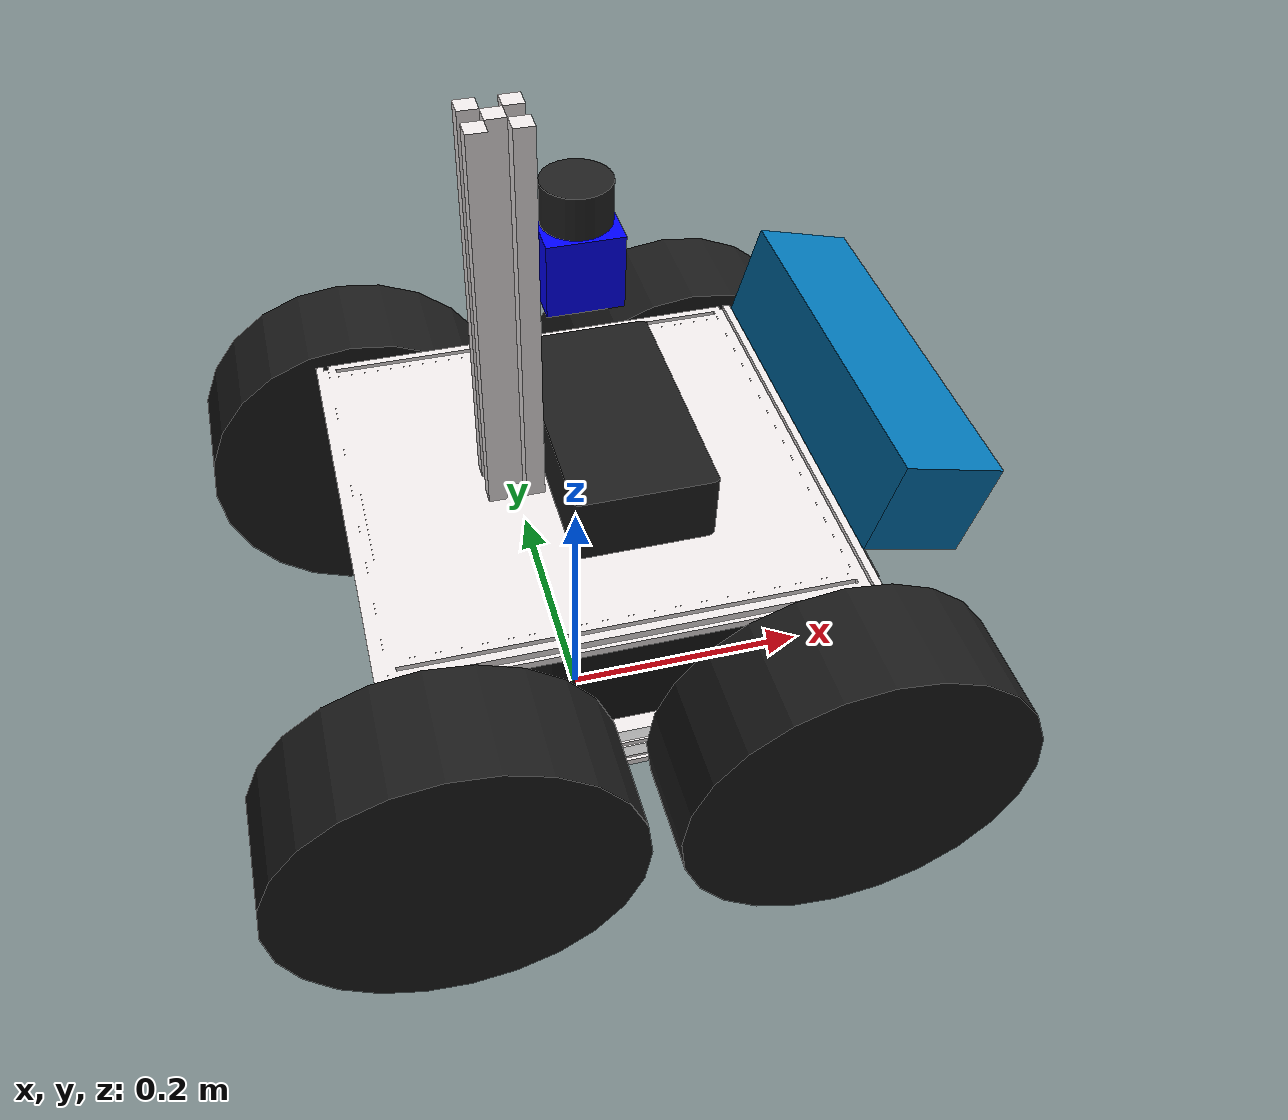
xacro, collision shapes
<?xml version="1.0"?>
<robot name="Volksbot"
	xmlns:xi="http://www.w3.org/2001/XInclude"
	xmlns:gazebo="http://playerstage.sourceforge.net/gazebo/xmlschema/#gz"
	xmlns:model="http://playerstage.sourceforge.net/gazebo/xmlschema/#model"
	xmlns:sensor="http://playerstage.sourceforge.net/gazebo/xmlschema/#sensor"
	xmlns:body="http://playerstage.sourceforge.net/gazebo/xmlschema/#body"
	xmlns:geom="http://playerstage.sourceforge.net/gazebo/xmlschema/#geom"
	xmlns:joint="http://playerstage.sourceforge.net/gazebo/xmlschema/#joint"
	xmlns:controller="http://playerstage.sourceforge.net/gazebo/xmlschema/#controller"
	xmlns:interface="http://playerstage.sourceforge.net/gazebo/xmlschema/#interface"
	xmlns:rendering="http://playerstage.sourceforge.net/gazebo/xmlschema/#rendering"
	xmlns:renderable="http://playerstage.sourceforge.net/gazebo/xmlschema/#renderable"
	xmlns:physics="http://playerstage.sourceforge.net/gazebo/xmlschema/#physics"
	xmlns:xacro="http://ros.org/wiki/xacro"
>

<!--Variable Pi definieren-->
<property name="pi" value="3.1415926535897931"/>
<property name="mass_base" value="25"/>     <!-- alter Wert 25 -->
<property name="mass_wheel" value="0.85"/>  <!-- alter Wert 0.75 -->

	<link name="base_footprint">
		<visual>
			<geometry>
				<box size="0.001 0.001 0.001"/>
			</geometry>
			<origin rpy="0 0 0" xyz="0 0 0"/>
		</visual>
	</link>
	<joint name="base_footprint_joint" type="fixed">
		<parent link="base_footprint"/>
		<child link="base_link"/>
		<origin rpy="0 0 0" xyz="0 0 0"/>
	</joint>

<!-- #######################  Main Body  ###################################-->
	<link name="base_link">
		<visual>
			<geometry>
				<mesh filename="package://volksbot_new/Media/VolksbotChassis.stl"/>
			</geometry>
			<origin rpy="0 0 0" xyz="0 0 0.175"/>
			<material name="light_gray_one">
				<color rgba="0.93 0.91 0.91 1"/>
			</material>
		</visual>
		<collision>
			<geometry>
				<mesh filename="package://volksbot_new/Media/VolksbotChassis.stl"/>
			</geometry>
			<origin xyz="0 0 0.175"/>
		</collision>
		<inertial>
			<mass value="${mass_base}"/>
			<inertia ixx="0.83333" ixy="0.0" ixz="0.0" iyy="1.0052" iyz="0.0" izz="0.33854"/>
			<origin xyz="0 0 0.075" />
		</inertial>
	</link>
	<gazebo reference="base_link">
		<material>Gazebo/WhiteGlow</material>
		<turnGravityOff>false</turnGravityOff>
	</gazebo>
<!-- #######################  Frontplatte  ###################################-->
	<link name="frontpanel_link">
		<visual>
			<geometry>
				<mesh filename="package://volksbot_new/Media/VolksbotFrontplatte.stl"/>
			</geometry>
			<origin rpy="0 0 0" xyz="-0.002 0 0.075"/>
			<material name="gray">
				<color rgba="0.36 .36 .36 1"/>
			</material>
		</visual>
		<collision>
			<geometry>
				<mesh filename="package://volksbot_new/Media/VolksbotFrontplatte.stl"/>
			</geometry>
			<origin xyz="-0.002 0 0.075"/>
		</collision>
		<inertial>
			<mass value="0.01"/>
			<inertia ixx="0.0001" ixy="0.0" ixz="0.0" iyy="0.0001" iyz="0.0" izz="0.0001"/>
			<origin xyz="-0.17 0 -0.025" />
		</inertial>
	</link>
	<joint name="frontpanel_joint" type="fixed">
		<parent link="base_link"/>
		<child link="frontpanel_link"/>
		<origin rpy="0 0 0" xyz="0.17 0 0.1"/>
	</joint>

	<gazebo reference="frontpanel_link">
		<material>Gazebo/Black</material>
		<turnGravityOff>false</turnGravityOff>
	</gazebo>
<!-- #######################  Laserstange  ###################################-->
	<link name="laserstick_link">
		<visual>
			<geometry>
				<mesh filename="package://volksbot_new/Media/VolksbotLaserstange.stl"/>
			</geometry>
			<origin rpy="0 0 0" xyz="0 0 0"/>
			<material name="light_gray_one">
				<color rgba="0.93 0.91 0.91 1"/>
			</material>
		</visual>
		<collision>
			<geometry>
				<mesh filename="package://volksbot_new/Media/VolksbotLaserstange.stl"/>
			</geometry>
			<origin xyz="0 0 0"/>
		</collision>
		<inertial>
			<mass value="0.01"/>
			<inertia ixx="0.0001" ixy="0.0" ixz="0.0" iyy="0.0001" iyz="0.0" izz="0.0001"/>
			<origin xyz="0 0 -0.175" />
		</inertial>
	</link>
	<joint name="laserstick_joint" type="fixed">
		<parent link="base_link"/>
		<child link="laserstick_link"/>
		<origin rpy="0 0 0" xyz="0 0 0.25"/>
	</joint>

	<gazebo reference="laserstick_link">
		<material>Gazebo/WhiteGlow</material>
		<turnGravityOff>false</turnGravityOff>
	</gazebo>

<!-- #######################  Pc  ###################################-->
	<link name="pc_link">
		<visual>
			<geometry>
				<mesh filename="package://volksbot_new/Media/VolksbotPc.stl"/>
			</geometry>
			<origin rpy="0 0 0" xyz="-0.05 0 0"/>
			<material name="dark_gray">
				<color rgba="0.11 .11 .11 1"/>
			</material>
		</visual>
		<collision>
			<geometry>
				<mesh filename="package://volksbot_new/Media/VolksbotPc.stl"/>
			</geometry>
			<origin xyz="-0.05 0 0"/>
		</collision>
		<inertial>
			<mass value="0.01"/>
			<inertia ixx="0.0001" ixy="0.0" ixz="0.0" iyy="0.0001" iyz="0.0" izz="0.0001"/>
			<origin xyz="-0.05 0 -0.175" />
		</inertial>
	</link>
	<joint name="pc_joint" type="fixed">
		<parent link="base_link"/>
		<child link="pc_link"/>
		<origin rpy="0 0 0" xyz="0.05 0 0.25"/>
	</joint>
	<gazebo reference="pc_link">
		<material>Gazebo/Black</material>
		<turnGravityOff>false</turnGravityOff>
	</gazebo>

<!-- #######################  Motor&Kette  ###################################-->
	<link name="motor_link">
		<visual>
			<geometry>
				<mesh filename="package://volksbot_new/Media/VolksbotAntrieb.stl"/>
			</geometry>
			<origin rpy="0 0 0" xyz="0 0 0"/>
			<material name="another_gray">
				<color rgba="0.65 .65 .65 1"/>
			</material>
		</visual>
		<collision>
			<geometry>
				<mesh filename="package://volksbot_new/Media/VolksbotAntrieb.stl"/>
			</geometry>
			<origin xyz="0 0 0"/>
		</collision>
		<inertial>
			<mass value="0.01"/>
			<inertia ixx="0.0001" ixy="0.0" ixz="0.0" iyy="0.0001" iyz="0.0" izz="0.0001"/>
			<origin xyz="0 0 -0.055" />
		</inertial>
	</link>
	<joint name="motor_joint" type="fixed">
		<parent link="base_link"/>
		<child link="motor_link"/>
		<origin rpy="0 0 0" xyz="0 0 0.13"/>
	</joint>
	<gazebo reference="motor_link">
		<material>Gazebo/BlueGlow</material>
		<turnGravityOff>false</turnGravityOff>
	</gazebo>
<!-- #######################  Battery  ###################################-->
	<link name="battery_link">
		<visual>
			<geometry>
				<mesh filename="package://volksbot_new/Media/VolksbotBattery.stl"/>
			</geometry>
			<origin rpy="0 0 0" xyz="0 0 0"/>
			<material name="battery_gray">
				<color rgba=".07 .07 .07 1"/>
			</material>
		</visual>
		<collision>
			<geometry>
				<mesh filename="package://volksbot_new/Media/VolksbotBattery.stl"/>
			</geometry>
			<origin xyz="0 0 0"/>
		</collision>
		<inertial>
			<mass value="0.01"/>
			<inertia ixx="0.0001" ixy="0.0" ixz="0.0" iyy="0.0001" iyz="0.0" izz="0.0001"/>
			<origin xyz="0 0 -0.025" />
		</inertial>
	</link>
	<joint name="battery_joint" type="fixed">
		<parent link="base_link"/>
		<child link="battery_link"/>
		<origin rpy="0 0 0" xyz="0 0 0.1"/>
	</joint>
	<gazebo reference="battery_link">
		<material>Gazebo/Black</material>
		<turnGravityOff>false</turnGravityOff>
	</gazebo>
<!--  ##############################  Rad vorne Rechts  ##############################-->
	<link name="right_front_wheel">
		<visual>
			<geometry>
				<mesh filename="package://volksbot_new/Media/original5.stl"/>
			</geometry>
			<origin rpy="${pi/2} 0 0" xyz="0 0 0"/>
			<material name="black">
				<color rgba="0.1 0.1 0.1 1"/>
			</material>
		</visual>
		<collision>
			<geometry>
				<cylinder length="0.085" radius="0.13"/>
			</geometry>
			<origin rpy="${pi/2} 0 0" xyz="0 0 0"/>
		</collision>
		<inertial>
			<mass value="${mass_wheel}"/>
			<inertia ixx="0.0041" ixy="0.0" ixz="0.0" iyy="0.0041" iyz="0.0" izz="0.00718"/>
			<origin xyz="0 0 0" />
		</inertial>
	</link>

	<joint name="right_front_wheel_joint" type="continuous">
		<axis xyz="0 1 0"/>
		<parent link="base_link"/>
		<child link="right_front_wheel"/>
		<origin rpy="0 0 0" xyz="0.14 -0.2075 0.13"/>
		<limit effort="100" velocity="100"/>
		<dynamics damping="0.0" friction="0.0"/>
	</joint>
	<gazebo reference="right_front_wheel">
		<mu1 value="100"/>
		<mu2 value="100"/>
		<kp value="1000000.0"/>
		<kd value="10000.0"/>
		<fdir value="1 0 0"/>
		<friction value="100.0"/>
		<material>Gazebo/Grey</material>
		<turnGravityOff>false</turnGravityOff>
	</gazebo>

<!--  ###############################  Rad hinten Rechts  ########################################## -->
	<link name="right_back_wheel">
		<visual>
			<geometry>
				<mesh filename="package://volksbot_new/Media/original5.stl"/>
			</geometry>
			<origin rpy="${pi/2} 0 0" xyz="0 0 0"/>
			<material name="black">
				<color rgba="0.1 0.1 0.1 1"/>
			</material>
		</visual>
		<collision>
			<geometry>
				<cylinder length="0.085" radius="0.13"/>
			</geometry>
			<origin rpy="${pi/2} 0 0" xyz="0 0 0"/>
		</collision>
		<inertial>
			<mass value="${mass_wheel}"/>
			<inertia ixx="0.0041" ixy="0.0" ixz="0.0" iyy="0.0041" iyz="0.0" izz="0.00718"/>
			<origin xyz="0 0 0" />
		</inertial>
	</link>

	<joint name="right_back_wheel_joint" type="continuous">
		<axis xyz="0 1 0"/>
		<parent link="base_link"/>
		<child link="right_back_wheel"/>
		<origin rpy="0 0 0" xyz="-0.14 -0.2075 0.13"/>
		<limit effort="100" velocity="100"/>
		<dynamics damping="0.0" friction="0.0"/>
	</joint>
	<gazebo reference="right_back_wheel">
		<mu1 value="100"/>
		<mu2 value="100"/>
		<kp value="1000000.0"/>
		<kd value="10000.0"/>
		<fdir value="1 0 0"/>
		<friction value="100.0"/>
		<material>Gazebo/Grey</material>
		<turnGravityOff>false</turnGravityOff>
	</gazebo>

<!--  ####################################  Rad vorne Links #######################################-->
	<link name="left_front_wheel">
		<visual>
			<geometry>
				<mesh filename="package://volksbot_new/Media/original5.stl"/>
			</geometry>
			<origin rpy="${pi/2} 0 0" xyz="0 0 0"/>
			<material name="black">
				<color rgba="0.1 0.1 0.1 1"/>
			</material>
		</visual>
		<collision>
			<geometry>
				<cylinder length="0.085" radius="0.13"/>
			</geometry>
			<origin rpy="${pi/2} 0 0" xyz="0 0 0"/>
		</collision>
		<inertial>
			<mass value="${mass_wheel}"/>
			<inertia ixx="0.0041" ixy="0.0" ixz="0.0" iyy="0.0041" iyz="0.0" izz="0.00718"/>
			<origin xyz="0 0 0" />
		</inertial>
	</link>

	<joint name="left_front_wheel_joint" type="continuous">
		<axis xyz="0 1 0"/>
		<parent link="base_link"/>
		<child link="left_front_wheel"/>
		<origin rpy="0 0 0" xyz="0.14 0.2075 0.13"/>
		<limit effort="100" velocity="100"/>
		<dynamics damping="0.0" friction="0.0"/>
	</joint>
	<gazebo reference="left_front_wheel">
		<mu1 value="100"/>
		<mu2 value="100"/>
		<kp value="1000000.0"/>
		<kd value="10000.0"/>
		<fdir value="1 0 0"/>
		<friction value="100.0"/>
		<material>Gazebo/Grey</material>
		<turnGravityOff>false</turnGravityOff>
	</gazebo>

<!-- #############################  Rad hinten Links  ######################################-->
	<link name="left_back_wheel">
		<visual>
			<geometry>
				<mesh filename="package://volksbot_new/Media/original5.stl"/>
			</geometry>
			<origin rpy="${pi/2} 0 0" xyz="0 0 0"/>
			<material name="black">
				<color rgba="0.1 0.1 0.1 1"/>
			</material>
		</visual>
		<collision>
			<geometry>
				<cylinder length="0.085" radius="0.13"/>
			</geometry>
			<origin rpy="${pi/2} 0 0" xyz="0 0 0"/>
		</collision>
		<inertial>
			<mass value="${mass_wheel}"/>
			<inertia ixx="0.0041" ixy="0.0" ixz="0.0" iyy="0.0041" iyz="0.0" izz="0.00718"/>
			<origin xyz="0 0 0" />
		</inertial>
	</link>

	<joint name="left_back_wheel_joint" type="continuous">
		<axis xyz="0 1 0"/>
		<parent link="base_link"/>
		<child link="left_back_wheel"/>
		<origin rpy="0 0 0" xyz="-0.14 0.2075 0.13"/>
		<limit effort="100" velocity="100"/>
		<dynamics damping="0.0" friction="0.0"/>
	</joint>
	<gazebo reference="left_back_wheel">
		<mu1 value="100"/>  // alte Werte 57
		<mu2 value="100"/> // 1.5
		<kp value="1000000.0"/>  // 1000000.0
		<kd value="10000.0"/>    // 1.0
		<fdir value="1 0 0"/>  // 1 0 0
		<friction value="100.0"/>
		<material>Gazebo/Grey</material>
		<turnGravityOff>false</turnGravityOff>
	</gazebo>

<!--  #################################  camera  ########################################-->
	<link name="platform">
		<visual>
			<geometry>
				<box size="0.01 0.01 0.01"/>
			</geometry>
			<origin rpy="0 0 0" xyz="0 0 0"/>
			<material name="red">
				<color rgba="1 0 0 1"/>
			</material>
		</visual>
		<collision>
			<geometry>
				<box size="0.01 0.01 0.01"/>
			</geometry>
			<origin xyz="0 0 0"/>
		</collision>
		<inertial>
			<mass value="0.001"/>
			<inertia ixx=".0001" ixy="0.0" ixz="0.0" iyy=".0001" iyz="0.0" izz=".0001"/>
			<origin xyz="-0.2 0 -0.185" />
		</inertial>
	</link>
<!--position camera platform-->
	<joint name="base_link_to_platform" type="fixed">
		<parent link="base_link"/>
		<child link="platform"/>
		<origin rpy="0 0.25 0" xyz="0.2 0 0.26"/>
	</joint>

  <!-- Kinect frames and mounting (includes simulation) -->
  <joint name="base_camera_joint" type="fixed">
    <origin rpy="0 0 0" xyz="0 0 0.03"/>
    <parent link="platform"/>
    <child link="camera_link"/>
  </joint>
  <link name="camera_link">
    <inertial>
      <mass value="0.01"/>
      <origin xyz="-0.2 0 -0.185"/>
      <inertia ixx="0.001" ixy="0.0" ixz="0.0" iyy="0.001" iyz="0.0" izz="0.001"/>
    </inertial>
    <visual>
      <origin rpy="0 0 0" xyz=" 0 0 0 "/>
      <geometry>
        <mesh filename="package://volksbot_new/meshes/kinect.dae"/>
      </geometry>
    </visual>
    <collision>
      <origin rpy="0 0 0" xyz="0.0 0.0 0.0"/>
      <geometry>
        <box size="0.0730 .2760 0.0720"/>
      </geometry>
    </collision>
  </link>
  <joint name="camera_depth_joint" type="fixed">
    <origin rpy="0 0 0" xyz="0 0.018 0"/>
    <parent link="camera_link"/>
    <child link="camera_depth_frame"/>
  </joint>
  <link name="camera_depth_frame">
    <inertial>
      <mass value="0.01"/>
      <origin xyz="-0.2 0 -0.185"/>
      <inertia ixx="0.001" ixy="0.0" ixz="0.0" iyy="0.001" iyz="0.0" izz="0.001"/>
    </inertial>
  </link>
  <joint name="camera_depth_optical_joint" type="fixed">
    <origin rpy="-1.570795 0 -1.570795" xyz="0 0 0"/>
    <parent link="camera_depth_frame"/>
    <child link="camera_depth_optical_frame"/>
  </joint>
  <link name="camera_depth_optical_frame">
    <inertial>
      <mass value="0.001"/>
      <origin xyz="-0.2 0 -0.185"/>
      <inertia ixx="0.0001" ixy="0.0" ixz="0.0" iyy="0.0001" iyz="0.0" izz="0.0001"/>
    </inertial>
  </link>
  <joint name="camera_rgb_joint" type="fixed">
    <origin rpy="0 0 0" xyz="0 -0.005 0"/>
    <parent link="camera_link"/>
    <child link="camera_rgb_frame"/>
  </joint>
  <link name="camera_rgb_frame">
    <inertial>
      <mass value="0.001"/>
      <origin xyz="-0.2 0 -0.185"/>
      <inertia ixx="0.0001" ixy="0.0" ixz="0.0" iyy="0.0001" iyz="0.0" izz="0.0001"/>
    </inertial>
  </link>
  <joint name="camera_rgb_optical_joint" type="fixed">
    <origin rpy="-1.570795 0 -1.570795" xyz="0 0 0"/>
    <parent link="camera_rgb_frame"/>
    <child link="camera_rgb_optical_frame"/>
  </joint>
  <link name="camera_rgb_optical_frame">
    <inertial>
      <mass value="0.001"/>
      <origin xyz="-0.2 0 -0.185"/>
      <inertia ixx="0.0001" ixy="0.0" ixz="0.0" iyy="0.0001" iyz="0.0" izz="0.0001"/>
    </inertial>
  </link>
<!-- Kinect Einstellungen -->
  <gazebo reference="camera_link">
    <sensor:camera name="camera">
      <imageFormat>R8G8B8</imageFormat>
      <imageSize>640 480</imageSize>
      <hfov>90</hfov>
      <nearClip>0.05</nearClip>
      <farClip>10</farClip>  // Std 3
      <updateRate>20</updateRate>
      <baseline>0.1</baseline>
      <controller:gazebo_ros_openni_kinect name="kinect_camera_controller" plugin="libgazebo_ros_openni_kinect.so">
	<cameraName>camera</cameraName>
        <alwaysOn>true</alwaysOn>
        <updateRate>20</updateRate>
        <imageTopicName>camera/image_raw</imageTopicName>
        <pointCloudTopicName>camera/depth/points</pointCloudTopicName>
        <cameraInfoTopicName>camera/camera_info</cameraInfoTopicName>
        <frameName>camera_depth_optical_frame</frameName>
	<CxPrime>0.0</CxPrime>
	<Cx>0.0</Cx>
	<Cy>0.0</Cy>
	<focalLength>320.000101</focalLength>
	<hackBaseline>0.0</hackBaseline>
        <distortionK1>0.0</distortionK1>
        <distortionK2>0.0</distortionK2>
        <distortionK3>0.0</distortionK3>
        <distortionT1>0.0</distortionT1>
        <distortionT2>0.0</distortionT2>
      </controller:gazebo_ros_openni_kinect>
    </sensor:camera>
  </gazebo>

<!--  ###############################  laser ######################################### -->
	<link name="roll_tilt_base">
		<visual>
			<geometry>
				<box size="0.001 0.001 0.001"/>
			</geometry>
			<origin rpy="0 0 0" xyz="0 0 0"/>
		</visual>
		<inertial>
			<mass value="0.01"/>
			<inertia ixx=".001" ixy="0.0" ixz="0.0" iyy=".001" iyz="0.0" izz=".001"/>
			<origin xyz="0 0 0.0" />
		</inertial>
	</link>
	<joint name="base_link_to_roll_tilt_base" type="continuous">   <!--revolute-->
		<parent link="base_link"/>
		<child link="roll_tilt_base"/>
		 <axis xyz="1 0 0"/>
		<origin rpy="0 0 0" xyz="0 0 0.405"/>
	</joint>

	<link name="laser_platform">
		<visual>
			<geometry>
				<box size="0.01 0.01 0.01"/>
			</geometry>
			<origin rpy="0 0 0" xyz="0 0 0"/>
			<material name="blue">
				<color rgba="0 0 1 1"/>
			</material>
		</visual>
		<collision>
			<geometry>
				<box size="0.01 0.01 0.01"/>
			</geometry>
			<origin xyz="0 0 0"/>
		</collision>
		<inertial>
			<mass value="0.001"/>
			<inertia ixx=".001" ixy="0.0" ixz="0.0" iyy=".001" iyz="0.0" izz=".001"/>
			<origin xyz="0 0 -0.33" />
		</inertial>
	</link>
<!--position laser_platform-->
	<joint name="roll_tilt_base_to_laser_platform" type="continuous">   <!--revolute-->
		<parent link="roll_tilt_base"/>
		<child link="laser_platform"/>
		 <axis xyz="0 1 0"/>
		<origin rpy="0 0 0" xyz="0 0 0"/>
	</joint>
	<gazebo reference="platform">
		<material>Gazebo/Blue</material>
		<turnGravityOff>false</turnGravityOff>
	</gazebo>

  <!-- BASE LASER ATTACHMENT -->
  <joint name="laser_base_mount_joint" type="fixed">
    <origin rpy="0 0 0" xyz="0 0 0"/>
    <parent link="laser_platform"/>
    <child link="laser_base_link"/>
  </joint>

  <link name="laser_base_link" type="fixed">
    <inertial>
      <mass value="0.1"/>
      <origin xyz="0 0 -0.33"/>
      <inertia ixx="0.1" ixy="0" ixz="0" iyy="0.1" iyz="0" izz="0.1"/>
    </inertial>
    <visual>
      <origin rpy="0 0 0" xyz="0 0 0.025"/>
      <geometry>
        <box size="0.05 0.05 0.05"/>
      </geometry>
	<material name="blue">
		<color rgba="0 0 1 1"/>
	</material>
    </visual>
    <collision>
      <origin rpy="0 0 0" xyz="0 0 0.025"/>
      <geometry>
        <box size="0.05 0.05 0.05"/>
      </geometry>
    </collision>
  </link>
  <gazebo reference="laser_base_link">
    <material>Gazebo/Blue</material>
  </gazebo>
  <joint name="base_scan_joint" type="fixed">
    <origin rpy="0 0 0" xyz="0 0 0.05"/>
    <parent link="laser_base_link"/>
    <child link="laser"/>
  </joint>
  <link name="laser" type="laser">
    <inertial>
      <mass value="0.1"/>
      <origin xyz="0 0 -0.33"/>
      <inertia ixx="0.1" ixy="0" ixz="0" iyy="0.1" iyz="0" izz="0.1"/>
    </inertial>
    <visual>
      <origin rpy="0 0 0" xyz="0 0 0.014"/>
      <geometry>
        <cylinder length="0.028" radius="0.0229"/>
      </geometry>
    </visual>
    <collision>
      <origin rpy="0 0 0" xyz="0 0 0.014"/>
      <geometry>
        <cylinder length="0.028" radius="0.0229"/>
      </geometry>
    </collision>
  </link>
  <gazebo reference="laser">
    <material>Gazebo/Black</material>
  </gazebo>

<!--Laserscanner Einstellungen-->
  <gazebo reference="laser">
    <sensor:ray name="laser">
      <rayCount>683</rayCount>
      <rangeCount>683</rangeCount>
      <laserCount>1</laserCount>
      <origin>0.0 0.0 0.0</origin>
      <displayRays>false</displayRays>
      <minAngle>-135</minAngle>
      <maxAngle> 135</maxAngle>
      <minRange>0.06</minRange>
      <maxRange>12.0</maxRange>
      <resRange>0.001</resRange>
      <updateRate>10.0</updateRate>
      <controller:gazebo_ros_laser name="gazebo_ros_base_scan_link_controller" plugin="libgazebo_ros_laser.so">
	<hokuyoMinIntensity>101.000000</hokuyoMinIntensity>
        <gaussianNoise>0.005</gaussianNoise>
        <alwaysOn>true</alwaysOn>
        <updateRate>10.0</updateRate>
        <topicName>base_scan/scan</topicName>
        <frameName>base_scan_link</frameName>
        <interface:laser name="gazebo_ros_base_scan_link_iface"/>
      </controller:gazebo_ros_laser>
    </sensor:ray>
  </gazebo>

<!--  ############################  Husky Controller Fuerte  ###################################-->
<gazebo>
			<controller:husky_plugin name="husky_diff_controller" plugin="libhusky_description_new.so">
		        <alwaysOn>true</alwaysOn>
		        <updateRate>100.0</updateRate>  <!-- alt 100 -->
		        <backLeftJoint>left_back_wheel_joint</backLeftJoint>
		        <backRightJoint>right_back_wheel_joint</backRightJoint>
		        <frontLeftJoint>left_front_wheel_joint</frontLeftJoint>
		        <frontRightJoint>right_front_wheel_joint</frontRightJoint>
		        <wheelSeparation>0.445</wheelSeparation>
		        <wheelDiameter>0.26</wheelDiameter>
		        <torque>6</torque>  <!--24 alt  24/4 = 6.0-->
        </controller:husky_plugin>
	</gazebo>

<!-- ######################### Laser Level Controller ##################################### -->
 <gazebo>
    <controller:laser_level_plugin name="laser_level_controller" plugin="libohm_gaz_laser_lev.so">
                <alwaysOn>true</alwaysOn>
                <updateRate>100.0</updateRate>  <!-- alt 100 -->
    </controller:laser_level_plugin>
</gazebo>

  <!-- #################################### IMU SENSOR ################################### -->

  <joint name="imu_joint" type="fixed">
      <axis xyz="1 0 0"/>
      <origin xyz="0 0 0.301"/>
      <parent link="base_link"/>
      <child link="imu_link"/>
  </joint>

  <link name="imu_link">
      <inertial>
        <mass value="0.001"/>
        <origin rpy="0 0 0" xyz="0 0 0"/>
        <inertia ixx="0.0001" ixy="0" ixz="0" iyy="0.000001" iyz="0" izz="0.0001"/>
      </inertial>
      <visual>
        <origin rpy="0 0 0" xyz="0 0 0"/>
        <geometry>
          <box size="0.001 0.001 0.001"/>
        </geometry>
      </visual>
      <collision>
        <origin rpy="0 0 0" xyz="0 0 0"/>
        <geometry>
          <box size=".001 .001 .001"/>
        </geometry>
      </collision>
  </link>

<!-- ################################ 3D Odometrie ###################################################### -->

<!--  ############################## EchtzeitPlugin ###################################################### -->
<!-- ######################################### PowerMonitor  ###############################################  -->
</robot>
